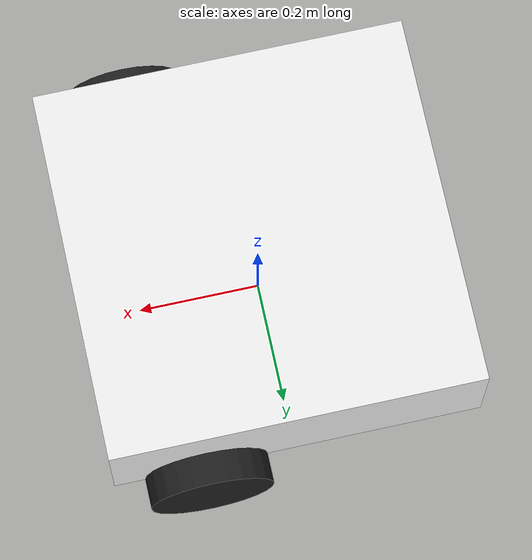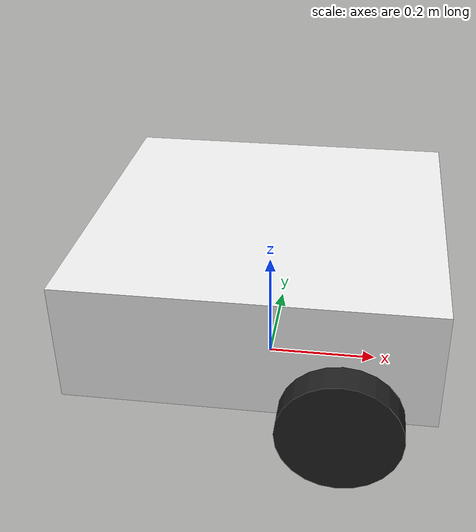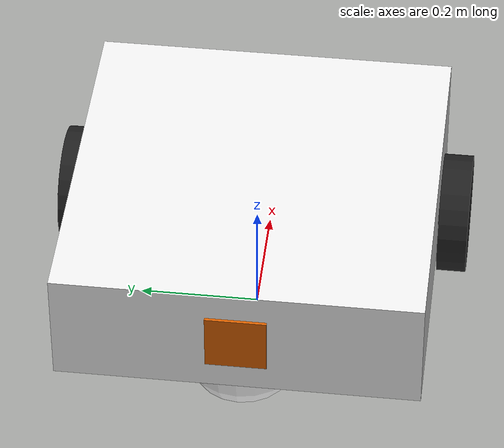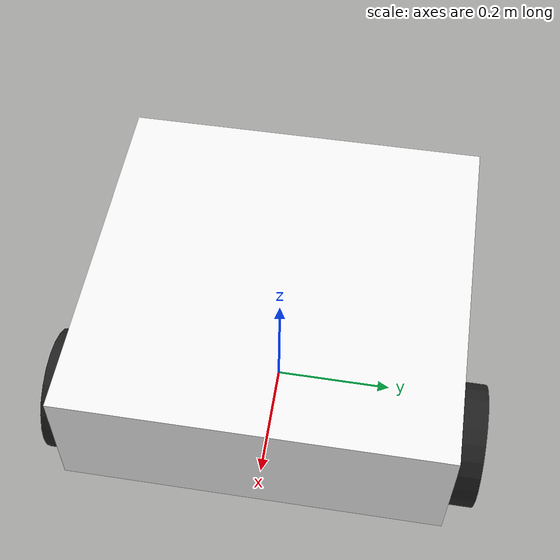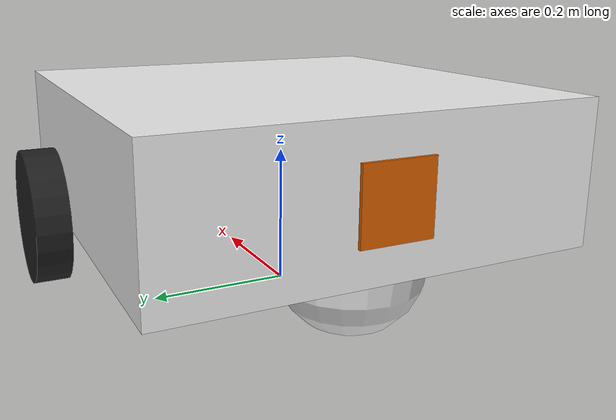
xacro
<?xml version='1.0'?>
<robot name="leader_bot" xmlns:xacro="http://www.ros.org/wiki/xacro">
    <xacro:arg name="namespace" default="leader"/>

    <xacro:include filename="materials.xacro" />
    <xacro:include filename="wheel.xacro" />
    <xacro:include filename="inertial.xacro" />

    <ros2_control name="GazeboSimSystem" type="system">
        <hardware>
            <plugin>gz_ros2_control/GazeboSimSystem</plugin>
        </hardware>
        <joint name="wheel_left_joint">
            <command_interface name="velocity"/>
            <state_interface name="position"/>
            <state_interface name="velocity">
                <param name="initial_value">0.0</param>
            </state_interface>
        </joint>
        <joint name="wheel_right_joint">
            <command_interface name="velocity"/>
            <state_interface name="position"/>
            <state_interface name="velocity">
                <param name="initial_value">0.0</param>
            </state_interface>
        </joint>
        <joint name="caster_roll_joint">
            <state_interface name="position"/>
            <state_interface name="velocity"/>
        </joint>
        <joint name="caster_pitch_joint">
            <state_interface name="position"/>
            <state_interface name="velocity"/>
        </joint>
    </ros2_control>

    <gazebo>
        <plugin filename="gz_ros2_control-system" name="gz_ros2_control::GazeboSimROS2ControlPlugin">
            <parameters>$(find follower_scene)/config/diff_$(arg namespace).yaml</parameters>
            <ros>
                <namespace>$(arg namespace)</namespace>
                <remapping>~/robot_description:=/$(arg namespace)/robot_description</remapping>
                <remapping>tf:=/tf</remapping>
                <remapping>tf_static:=/tf_static</remapping>
            </ros>
        </plugin>
    </gazebo>

    <link name='base_link'>
        <origin xyz="0.0 0.0 0.1" rpy="0.0 0 0.0"/>
        <visual name='base_visual'>
            <origin xyz="0.0 0.0 0.2" rpy="0.0 0.0 0.0"/>
            <geometry><box size="0.6 0.6 0.2"/></geometry>
            <material name="white"/>
        </visual>
        <xacro:inertial_box mass="1" x="0.6" y="0.6" z="0.2">
            <origin xyz="0 0 0.2" rpy="0 0 0"/>
        </xacro:inertial_box>
        <collision>
            <origin xyz="0 0 0.2" rpy="0 0 0"/>
            <geometry><box size="0.6 0.6 0.2"/></geometry>
        </collision>
    </link>

    <link name="caster_link">
        <visual name="caster_visual">
            <origin xyz="0 0 0" rpy="0 0 0"/>
            <geometry><sphere radius="0.1"/></geometry>
            <material name="white"/>
        </visual>
        <collision name="caster_collision">
            <origin xyz="0 0 0" rpy="0 0 0"/>
            <geometry><sphere radius="0.1"/></geometry>
        </collision>
        <xacro:inertial_sphere mass="0.05" radius="0.1">
            <origin xyz="0 0 0" rpy="0 0 0"/>
        </xacro:inertial_sphere>
    </link>

    <link name="caster_roll_link">
        <inertial>
            <mass value="0.001"/>
            <origin xyz="0 0 0" rpy="0 0 0"/>
            <inertia ixx="1e-6" ixy="0" ixz="0"
                    iyy="1e-6" iyz="0"
                    izz="1e-6"/>
        </inertial>
    </link>

    <joint name="caster_roll_joint" type="continuous">
        <origin xyz="-0.2 0 0.1" rpy="0 0 0"/>
        <parent link="base_link"/>
        <child link="caster_roll_link"/>
        <axis xyz="1 0 0"/>
        <dynamics damping="0.0" friction="0.0"/>
    </joint>

    <joint name="caster_pitch_joint" type="continuous">
        <origin xyz="0 0 0" rpy="0 0 0"/>
        <parent link="caster_roll_link"/>
        <child link="caster_link"/>
        <axis xyz="0 1 0"/>
        <dynamics damping="0.0" friction="0.0"/>
    </joint>

    <gazebo reference="caster_link">
        <mu1>0.0</mu1>
        <mu2>0.0</mu2>
        <surface>
            <friction>
                <ode>
                    <mu>0.0</mu>
                    <mu2>0.0</mu2>
                </ode>
            </friction>
            <contact>
                <ode>
                    <kp>1000000.0</kp>
                    <kd>100.0</kd>
                    <min_depth>0.001</min_depth>
                    <max_vel>1.0</max_vel>
                </ode>
            </contact>
        </surface>
        <kp>1000000.0</kp>
        <kd>100.0</kd>
        <minDepth>0.001</minDepth>
        <maxVel>1.0</maxVel>
    </gazebo>

    <xacro:wheel side="left" x="0.15" y="0.325" z="0.1"/>
    <xacro:wheel side="right" x="0.15" y="-0.325" z="0.1"/>

    <joint name="aruco_joint" type="fixed">
        <parent link="base_link"/>
        <child link="aruco_board_link"/>
        <origin xyz="-0.3 0 0.2" rpy="0 0 3.14159"/>
    </joint>

    <link name="aruco_board_link">
        <visual>
            <origin xyz="0 0 0" rpy="0 1.5708 0"/>
            <geometry><box size="0.1 0.1 0.01"/></geometry>
        </visual>
        <collision>
            <origin xyz="0 0 0" rpy="0 1.5708 0"/>
            <geometry><box size="0.1 0.1 0.01"/></geometry>
        </collision>
        <inertial>
            <mass value="0.05"/>
            <origin xyz="0 0 0" rpy="0 1.5708 0"/>
            <inertia ixx="0.0001" ixy="0" ixz="0"
                    iyy="0.0001" iyz="0"
                    izz="0.0001"/>
        </inertial>
    </link>

    <gazebo reference="aruco_board_link">
        <visual>
            <material>
                <diffuse>1.0 1.0 1.0 1.0</diffuse>
                <pbr>
                    <metal>
                        <albedo_map>file://$(find follower_scene)/models/aruco_3/textures/marker_42.png</albedo_map>
                    </metal>
                </pbr>
            </material>
        </visual>
    </gazebo>

</robot>

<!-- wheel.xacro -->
<robot name="diff_drive" xmlns:xacro="http://www.ros.org/wiki/xacro">
<xacro:macro name="wheel" params="side x y z">
    <link name='wheel_${side}'>
        <visual name='wheel_${side}_visual'>
            <origin xyz="0 0 0" rpy=" 0 0 0"/>
            <geometry><cylinder length="0.05" radius="0.1"/></geometry>
            <material name="black"/>
        </visual>
        <xacro:inertial_cylinder mass="0.1" length="0.05" radius="0.1">
            <origin xyz="0 0 0" rpy="0 0 0"/>
        </xacro:inertial_cylinder>
        <collision>
            <origin xyz="0 0 0" rpy="0 0 0"/>
            <geometry><cylinder radius="0.1" length="0.05"/></geometry>
        </collision>
    </link>
    <joint name="wheel_${side}_joint" type="continuous">
        <origin xyz="${x} ${y} ${z}" rpy="${-pi/2} 0 0"/>
        <child link="wheel_${side}"/>
        <axis xyz="0 0 1"/>
        <parent link="base_link"/>
        <limit effort="50" velocity="100"/>
        <joint_properties damping="0" friction="0.01"/>
    </joint>

    <gazebo reference="wheel_${side}">
        <mu1>3.0</mu1>
        <mu2>3.0</mu2>
        <surface>
            <friction>
                <ode>
                    <mu>3.0</mu>
                    <mu2>3.0</mu2>
                </ode>
            </friction>
            <contact>
                <ode>
                    <kp>1000000.0</kp>
                    <kd>100.0</kd>
                    <min_depth>0.001</min_depth>
                    <max_vel>1.0</max_vel>
                </ode>
            </contact>
        </surface>
        <kp>1000000.0</kp>
        <kd>100.0</kd>
        <minDepth>0.001</minDepth>
        <maxVel>1.0</maxVel>
    </gazebo>

</xacro:macro>
</robot>
